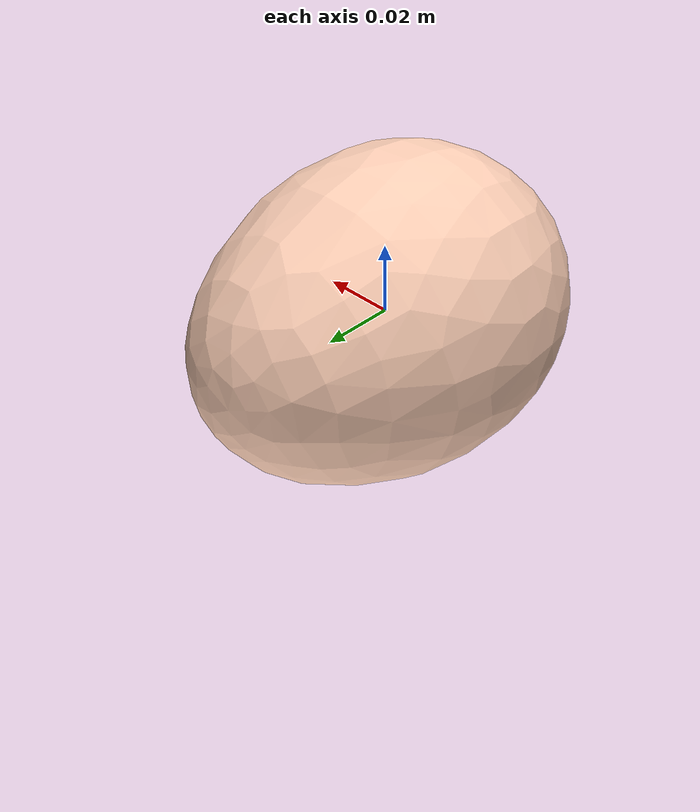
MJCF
<mujoco model="Egg_2">
  <compiler autolimits="true" boundmass="0.01" angle="radian"/>
  <default>
    <default class="/">
      <default class="__VISUAL_MJT__">
        <geom contype="0" conaffinity="0" group="0"/>
      </default>
      <default class="__STRUCTURAL_MJT__">
        <geom contype="8" conaffinity="15" group="4" friction="0.90000000000000002 0.90000000000000002 0.001" solref="0.025000000000000001 1" solimp="0.998 0.998 0.001"/>
      </default>
      <default class="__DYNAMIC_MJT__">
        <geom contype="1" conaffinity="15" group="4" friction="0.90000000000000002 0.90000000000000002 0.001" solref="0.025000000000000001 1" solimp="0.998 0.998 0.001"/>
      </default>
    </default>
  </default>
  <asset>
    <material name="material_Egg2_Mat" class="/" specular="0.5" shininess="0.5" rgba="1 0.81973430000000003 0.72058820000000001 1"/>
    <mesh name="Egg_2_egg_2" class="/" file="Egg_2_egg_2/Egg_2_egg_2.obj" scale="1 1 1"/>
  </asset>
  <worldbody>
    <body name="Egg_2">
      <joint name="Egg_2_free" class="/" type="free" pos="0 0 0" axis="0 0 1" stiffness="0" range="0 0" armature="0" damping="0.10000000000000001" frictionloss="0"/>
      <body name="Egg_2_egg_2" pos="-0 0 -0.00014999999999999999" quat="1 0 0 0">
        <geom name="Egg_2_egg_2" class="__VISUAL_MJT__" type="mesh" material="material_Egg2_Mat" shellinertia="true" mesh="Egg_2_egg_2"/>
        <geom name="Egg_2_PrimitiveCollider_0" class="__DYNAMIC_MJT__" type="capsule" size="0.039971310645341873 0.01601361483335495" rgba="0 1 0 1" pos="-0 0 0" quat="0.70710678118654757 0.70710678118654746 0 0"/>
      </body>
    </body>
  </worldbody>
</mujoco>
